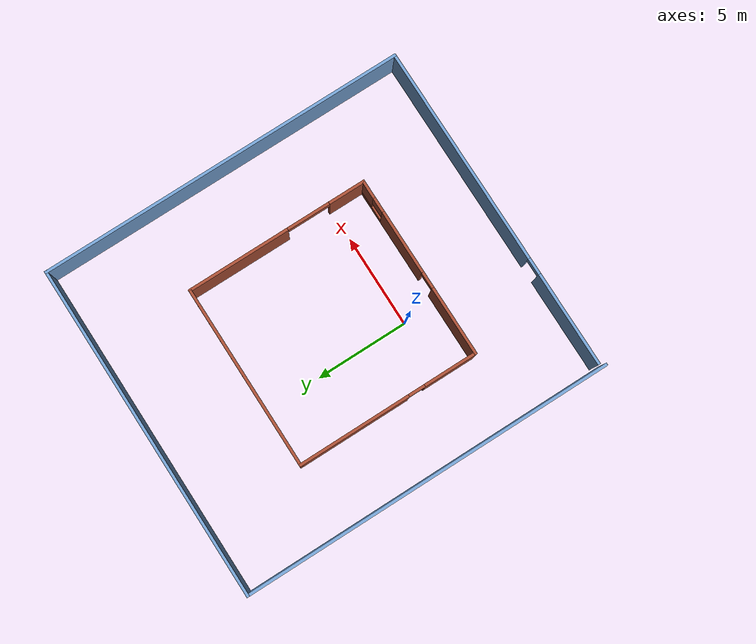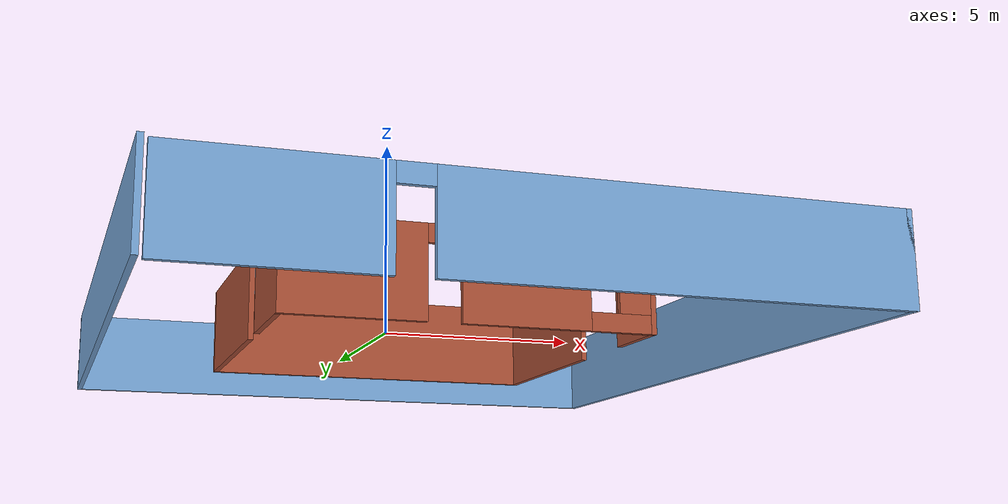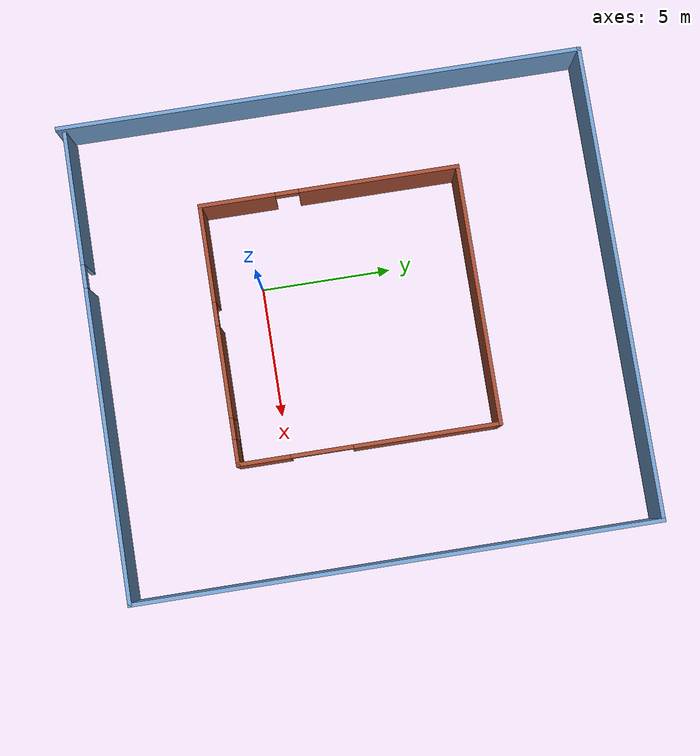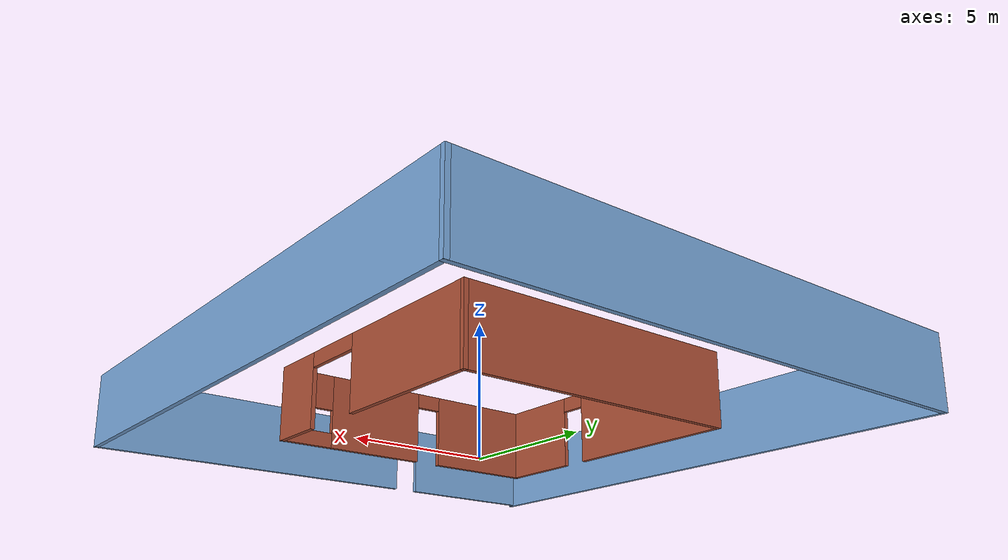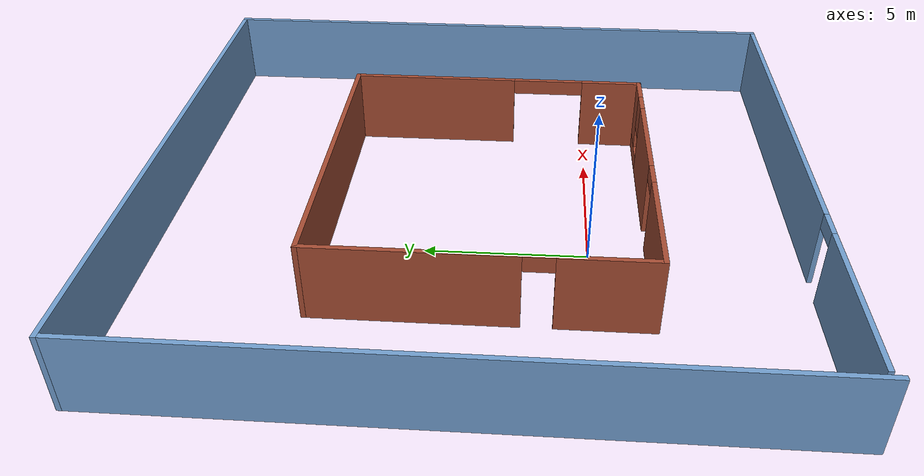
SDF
<?xml version='1.0'?>
<sdf version='1.7'>
  <model name='Building'>
    <pose>2.09531 3.33005 0 0 -0 0</pose>
    <link name='Wall_0'>
      <pose>-0.326805 -5.13204 0 0 -0 0</pose>
      <visual name='Wall_0_Visual_0'>
        <pose>-3.108 0 1.25 0 -0 0</pose>
        <geometry>
          <box>
            <size>3.78399 0.15 2.5</size>
          </box>
        </geometry>
        <material>
          <script>
            <uri>file://media/materials/scripts/gazebo.material</uri>
            <name>Gazebo/Bricks</name>
          </script>
          <ambient>0.447059 0.623529 0.811765 1</ambient>
        </material>
        <meta>
          <layer>0</layer>
        </meta>
      </visual>
      <collision name='Wall_0_Collision_0'>
        <geometry>
          <box>
            <size>3.78399 0.15 2.5</size>
          </box>
        </geometry>
        <pose>-3.108 0 1.25 0 -0 0</pose>
      </collision>
      <visual name='Wall_0_Visual_1'>
        <pose>1.42835 0 1.25 0 -0 0</pose>
        <geometry>
          <box>
            <size>3.48871 0.15 2.5</size>
          </box>
        </geometry>
        <material>
          <script>
            <uri>file://media/materials/scripts/gazebo.material</uri>
            <name>Gazebo/Bricks</name>
          </script>
          <ambient>0.447059 0.623529 0.811765 1</ambient>
        </material>
        <meta>
          <layer>0</layer>
        </meta>
      </visual>
      <collision name='Wall_0_Collision_1'>
        <geometry>
          <box>
            <size>3.48871 0.15 2.5</size>
          </box>
        </geometry>
        <pose>1.42835 0 1.25 0 -0 0</pose>
      </collision>
      <visual name='Wall_0_Visual_2'>
        <pose>4.08635 0 0.25 0 -0 0</pose>
        <geometry>
          <box>
            <size>1.8273 0.15 0.5</size>
          </box>
        </geometry>
        <material>
          <script>
            <uri>file://media/materials/scripts/gazebo.material</uri>
            <name>Gazebo/Bricks</name>
          </script>
          <ambient>0.447059 0.623529 0.811765 1</ambient>
        </material>
        <meta>
          <layer>0</layer>
        </meta>
      </visual>
      <collision name='Wall_0_Collision_2'>
        <geometry>
          <box>
            <size>1.8273 0.15 0.5</size>
          </box>
        </geometry>
        <pose>4.08635 0 0.25 0 -0 0</pose>
      </collision>
      <visual name='Wall_0_Visual_3'>
        <pose>4.48635 0 1.5 0 -0 0</pose>
        <geometry>
          <box>
            <size>1.0273 0.15 2</size>
          </box>
        </geometry>
        <material>
          <script>
            <uri>file://media/materials/scripts/gazebo.material</uri>
            <name>Gazebo/Bricks</name>
          </script>
          <ambient>0.447059 0.623529 0.811765 1</ambient>
        </material>
        <meta>
          <layer>0</layer>
        </meta>
      </visual>
      <collision name='Wall_0_Collision_3'>
        <geometry>
          <box>
            <size>1.0273 0.15 2</size>
          </box>
        </geometry>
        <pose>4.48635 0 1.5 0 -0 0</pose>
      </collision>
      <visual name='Wall_0_Visual_4'>
        <pose>3.5727 0 1.9 0 -0 0</pose>
        <geometry>
          <box>
            <size>0.8 0.15 1.2</size>
          </box>
        </geometry>
        <material>
          <script>
            <uri>file://media/materials/scripts/gazebo.material</uri>
            <name>Gazebo/Bricks</name>
          </script>
          <ambient>0.447059 0.623529 0.811765 1</ambient>
        </material>
        <meta>
          <layer>0</layer>
        </meta>
      </visual>
      <collision name='Wall_0_Collision_4'>
        <geometry>
          <box>
            <size>0.8 0.15 1.2</size>
          </box>
        </geometry>
        <pose>3.5727 0 1.9 0 -0 0</pose>
      </collision>
      <visual name='Wall_0_Visual_5'>
        <pose>-0.766011 0 2.25 0 -0 0</pose>
        <geometry>
          <box>
            <size>0.9 0.15 0.5</size>
          </box>
        </geometry>
        <material>
          <script>
            <uri>file://media/materials/scripts/gazebo.material</uri>
            <name>Gazebo/Bricks</name>
          </script>
          <ambient>0.447059 0.623529 0.811765 1</ambient>
        </material>
        <meta>
          <layer>0</layer>
        </meta>
      </visual>
      <collision name='Wall_0_Collision_5'>
        <geometry>
          <box>
            <size>0.9 0.15 0.5</size>
          </box>
        </geometry>
        <pose>-0.766011 0 2.25 0 -0 0</pose>
      </collision>
    </link>
    <link name='Wall_1'>
      <pose>4.59819 -0.207045 0 0 -0 1.5708</pose>
      <visual name='Wall_1_Visual_0'>
        <pose>-3.9794 0 1.25 0 -0 0</pose>
        <geometry>
          <box>
            <size>2.0412 0.15 2.5</size>
          </box>
        </geometry>
        <material>
          <script>
            <uri>file://media/materials/scripts/gazebo.material</uri>
            <name>Gazebo/Bricks</name>
          </script>
          <ambient>0.447059 0.623529 0.811765 1</ambient>
        </material>
        <meta>
          <layer>0</layer>
        </meta>
      </visual>
      <collision name='Wall_1_Collision_0'>
        <geometry>
          <box>
            <size>2.0412 0.15 2.5</size>
          </box>
        </geometry>
        <pose>-3.9794 0 1.25 0 -0 0</pose>
      </collision>
      <visual name='Wall_1_Visual_1'>
        <pose>2.1988 0 1.25 0 -0 0</pose>
        <geometry>
          <box>
            <size>5.60239 0.15 2.5</size>
          </box>
        </geometry>
        <material>
          <script>
            <uri>file://media/materials/scripts/gazebo.material</uri>
            <name>Gazebo/Bricks</name>
          </script>
          <ambient>0.447059 0.623529 0.811765 1</ambient>
        </material>
        <meta>
          <layer>0</layer>
        </meta>
      </visual>
      <collision name='Wall_1_Collision_1'>
        <geometry>
          <box>
            <size>5.60239 0.15 2.5</size>
          </box>
        </geometry>
        <pose>2.1988 0 1.25 0 -0 0</pose>
      </collision>
      <visual name='Wall_1_Visual_2'>
        <pose>-1.7806 0 2.25 0 -0 0</pose>
        <geometry>
          <box>
            <size>2.3564 0.15 0.5</size>
          </box>
        </geometry>
        <material>
          <script>
            <uri>file://media/materials/scripts/gazebo.material</uri>
            <name>Gazebo/Bricks</name>
          </script>
          <ambient>0.447059 0.623529 0.811765 1</ambient>
        </material>
        <meta>
          <layer>0</layer>
        </meta>
      </visual>
      <collision name='Wall_1_Collision_2'>
        <geometry>
          <box>
            <size>2.3564 0.15 0.5</size>
          </box>
        </geometry>
        <pose>-1.7806 0 2.25 0 -0 0</pose>
      </collision>
    </link>
    <link name='Wall_2'>
      <collision name='Wall_2_Collision'>
        <geometry>
          <box>
            <size>10 0.15 2.5</size>
          </box>
        </geometry>
        <pose>0 0 1.25 0 -0 0</pose>
      </collision>
      <visual name='Wall_2_Visual'>
        <pose>0 0 1.25 0 -0 0</pose>
        <geometry>
          <box>
            <size>10 0.15 2.5</size>
          </box>
        </geometry>
        <material>
          <script>
            <uri>file://media/materials/scripts/gazebo.material</uri>
            <name>Gazebo/Bricks</name>
          </script>
          <ambient>0.447059 0.623529 0.811765 1</ambient>
        </material>
        <meta>
          <layer>0</layer>
        </meta>
      </visual>
      <pose>-0.326805 4.71796 0 0 -0 3.14159</pose>
    </link>
    <link name='Wall_3'>
      <pose>-5.25181 -0.207045 0 0 -0 -1.5708</pose>
      <visual name='Wall_3_Visual_0'>
        <pose>-1.92236 0 1.25 0 -0 0</pose>
        <geometry>
          <box>
            <size>6.15529 0.15 2.5</size>
          </box>
        </geometry>
        <material>
          <script>
            <uri>file://media/materials/scripts/gazebo.material</uri>
            <name>Gazebo/Bricks</name>
          </script>
          <ambient>1 1 1 1</ambient>
        </material>
        <meta>
          <layer>0</layer>
        </meta>
      </visual>
      <collision name='Wall_3_Collision_0'>
        <geometry>
          <box>
            <size>6.15529 0.15 2.5</size>
          </box>
        </geometry>
        <pose>-1.92236 0 1.25 0 -0 0</pose>
      </collision>
      <visual name='Wall_3_Visual_1'>
        <pose>3.52764 0 1.25 0 -0 0</pose>
        <geometry>
          <box>
            <size>2.94471 0.15 2.5</size>
          </box>
        </geometry>
        <material>
          <script>
            <uri>file://media/materials/scripts/gazebo.material</uri>
            <name>Gazebo/Bricks</name>
          </script>
          <ambient>1 1 1 1</ambient>
        </material>
        <meta>
          <layer>0</layer>
        </meta>
      </visual>
      <collision name='Wall_3_Collision_1'>
        <geometry>
          <box>
            <size>2.94471 0.15 2.5</size>
          </box>
        </geometry>
        <pose>3.52764 0 1.25 0 -0 0</pose>
      </collision>
      <visual name='Wall_3_Visual_2'>
        <pose>1.60529 0 2.25 0 -0 0</pose>
        <geometry>
          <box>
            <size>0.9 0.15 0.5</size>
          </box>
        </geometry>
        <material>
          <script>
            <uri>file://media/materials/scripts/gazebo.material</uri>
            <name>Gazebo/Bricks</name>
          </script>
          <ambient>1 1 1 1</ambient>
        </material>
        <meta>
          <layer>0</layer>
        </meta>
      </visual>
      <collision name='Wall_3_Collision_2'>
        <geometry>
          <box>
            <size>0.9 0.15 0.5</size>
          </box>
        </geometry>
        <pose>1.60529 0 2.25 0 -0 0</pose>
      </collision>
    </link>
    <link name='Wall_5'>
      <pose>0.125 -9.8 0 0 -0 0</pose>
      <visual name='Wall_5_Visual_0'>
        <pose>-6.42415 0 1.25 0 -0 0</pose>
        <geometry>
          <box>
            <size>5.15169 0.15 2.5</size>
          </box>
        </geometry>
        <material>
          <script>
            <uri>file://media/materials/scripts/gazebo.material</uri>
            <name>Gazebo/Grey</name>
          </script>
          <ambient>0.447059 0.623529 0.811765 1</ambient>
        </material>
        <meta>
          <layer>0</layer>
        </meta>
      </visual>
      <collision name='Wall_5_Collision_0'>
        <geometry>
          <box>
            <size>5.15169 0.15 2.5</size>
          </box>
        </geometry>
        <pose>-6.42415 0 1.25 0 -0 0</pose>
      </collision>
      <visual name='Wall_5_Visual_1'>
        <pose>3.02585 0 1.25 0 -0 0</pose>
        <geometry>
          <box>
            <size>11.9483 0.15 2.5</size>
          </box>
        </geometry>
        <material>
          <script>
            <uri>file://media/materials/scripts/gazebo.material</uri>
            <name>Gazebo/Grey</name>
          </script>
          <ambient>0.447059 0.623529 0.811765 1</ambient>
        </material>
        <meta>
          <layer>0</layer>
        </meta>
      </visual>
      <collision name='Wall_5_Collision_1'>
        <geometry>
          <box>
            <size>11.9483 0.15 2.5</size>
          </box>
        </geometry>
        <pose>3.02585 0 1.25 0 -0 0</pose>
      </collision>
      <visual name='Wall_5_Visual_2'>
        <pose>-3.39831 0 2.25 0 -0 0</pose>
        <geometry>
          <box>
            <size>0.9 0.15 0.5</size>
          </box>
        </geometry>
        <material>
          <script>
            <uri>file://media/materials/scripts/gazebo.material</uri>
            <name>Gazebo/Grey</name>
          </script>
          <ambient>0.447059 0.623529 0.811765 1</ambient>
        </material>
        <meta>
          <layer>0</layer>
        </meta>
      </visual>
      <collision name='Wall_5_Collision_2'>
        <geometry>
          <box>
            <size>0.9 0.15 0.5</size>
          </box>
        </geometry>
        <pose>-3.39831 0 2.25 0 -0 0</pose>
      </collision>
    </link>
    <link name='Wall_6'>
      <collision name='Wall_6_Collision'>
        <geometry>
          <box>
            <size>20 0.15 2.5</size>
          </box>
        </geometry>
        <pose>0 0 1.25 0 -0 0</pose>
      </collision>
      <visual name='Wall_6_Visual'>
        <pose>0 0 1.25 0 -0 0</pose>
        <geometry>
          <box>
            <size>20 0.15 2.5</size>
          </box>
        </geometry>
        <material>
          <script>
            <uri>file://media/materials/scripts/gazebo.material</uri>
            <name>Gazebo/Grey</name>
          </script>
          <ambient>0.447059 0.623529 0.811765 1</ambient>
        </material>
        <meta>
          <layer>0</layer>
        </meta>
      </visual>
      <pose>9.05 0.125 0 0 -0 1.5708</pose>
    </link>
    <link name='Wall_7'>
      <collision name='Wall_7_Collision'>
        <geometry>
          <box>
            <size>18.25 0.15 2.5</size>
          </box>
        </geometry>
        <pose>0 0 1.25 0 -0 0</pose>
      </collision>
      <visual name='Wall_7_Visual'>
        <pose>0 0 1.25 0 -0 0</pose>
        <geometry>
          <box>
            <size>18.25 0.15 2.5</size>
          </box>
        </geometry>
        <material>
          <script>
            <uri>file://media/materials/scripts/gazebo.material</uri>
            <name>Gazebo/Grey</name>
          </script>
          <ambient>0.447059 0.623529 0.811765 1</ambient>
        </material>
        <meta>
          <layer>0</layer>
        </meta>
      </visual>
      <pose>0 10.05 0 0 -0 3.14159</pose>
    </link>
    <link name='Wall_8'>
      <collision name='Wall_8_Collision'>
        <geometry>
          <box>
            <size>20.25 0.15 2.5</size>
          </box>
        </geometry>
        <pose>0 0 1.25 0 -0 0</pose>
      </collision>
      <visual name='Wall_8_Visual'>
        <pose>0 0 1.25 0 -0 0</pose>
        <geometry>
          <box>
            <size>20.25 0.15 2.5</size>
          </box>
        </geometry>
        <material>
          <script>
            <uri>file://media/materials/scripts/gazebo.material</uri>
            <name>Gazebo/Grey</name>
          </script>
          <ambient>0.447059 0.623529 0.811765 1</ambient>
        </material>
        <meta>
          <layer>0</layer>
        </meta>
      </visual>
      <pose>-9.05 0 0 0 -0 -1.5708</pose>
    </link>
    <static>1</static>
  </model>
</sdf>
